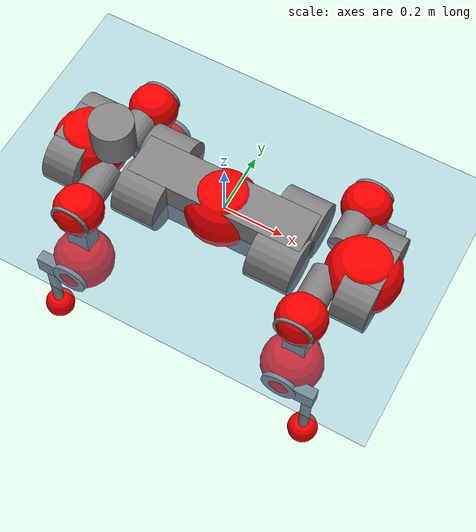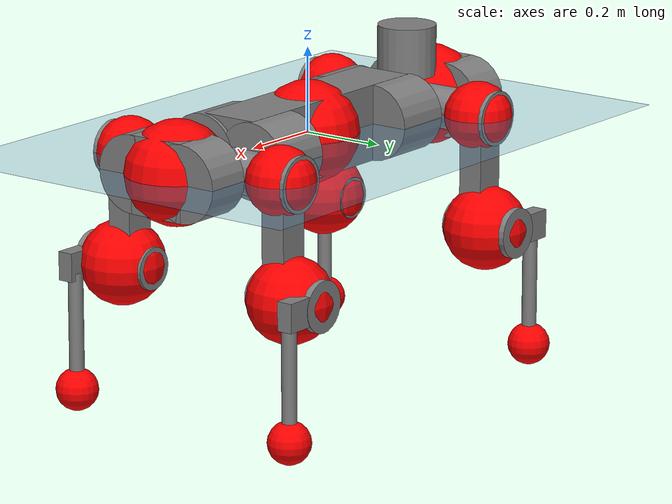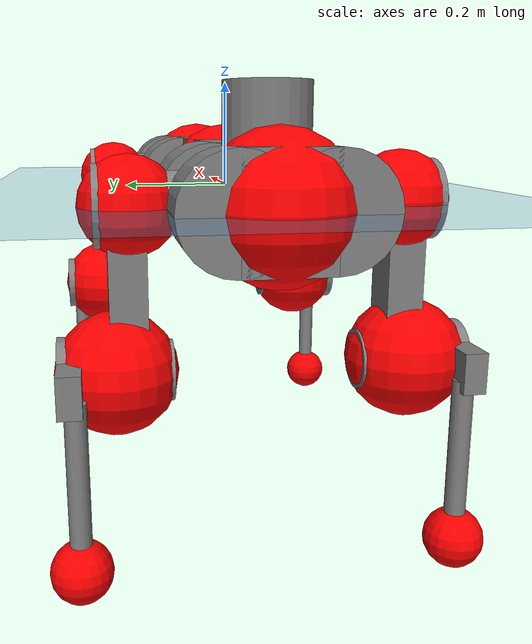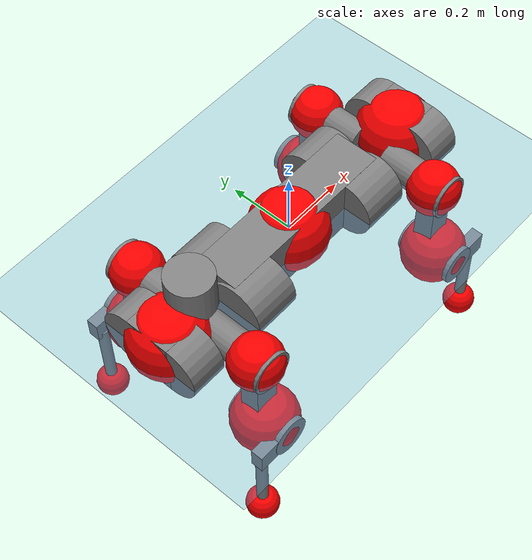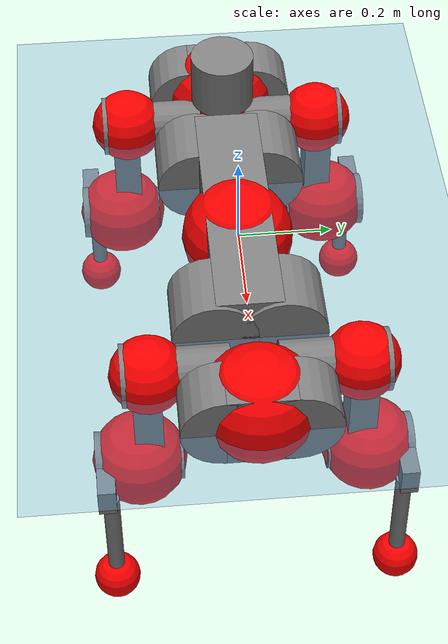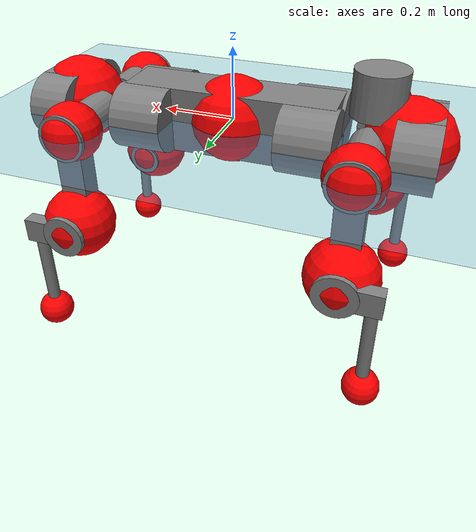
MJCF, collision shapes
<mujoco model="anymal_c">
  <compiler angle="radian" assetdir="assets" balanceinertia="true" inertiafromgeom="false"/>

  <option timestep="0.005" density="1.2" viscosity="2e-05"/>

  <size nkey="1"/>

  <visual>
    <quality shadowsize="8192"/>
    <map shadowclip="0.5"/>
  </visual>

  <default>
    <default class="/">
      <material specular="0" shininess="0.25"/>
      <geom contype="0" conaffinity="0" group="1" solref="-1000 -80"/>
      <site size="0.01 0.005 0.005" group="5"/>
      <general forcelimited="true" forcerange="-80 80" biastype="affine" gainprm="80" biasprm="0 -80 -2"/>
      <default class="anymal_c">
        <joint armature="0.01" damping="0.01" frictionloss="0.1"/>
        <default class="visual">
          <geom type="mesh" group="2"/>
          <default class="visual_zflip"/>
        </default>
        <default class="collision">
          <geom type="cylinder" group="3"/>
          <default class="foot">
            <geom size="0.03 0 0" type="sphere" condim="6" priority="1" friction="0.8 0.02 0.01" solimp="0.015 1 0.03"/>
          </default>
        </default>
      </default>
      <default class="reward_collision_sphere">
        <geom group="5" rgba="1 0 0 1"/>
      </default>
    </default>
  </default>

  <asset>
    <texture type="skybox" colorspace="auto" name="//unnamed_texture_0" builtin="gradient" rgb1="0.95 0.95 0.95" rgb2="0.95 0.95 0.95" width="100" height="600"/>
    <texture type="2d" colorspace="auto" name="texplane" builtin="checker" rgb1="0.345 0.575 0.748" rgb2="0.345 0.575 0.748" markrgb="1 1 1" width="512" height="512"/>
    <texture type="2d" colorspace="linear" name="base" file="base.png"/>
    <texture type="2d" colorspace="linear" name="top_shell" file="top_shell.png"/>
    <texture type="2d" colorspace="linear" name="bottom_shell" file="bottom_shell.png"/>
    <texture type="2d" colorspace="linear" name="remote" file="remote.png"/>
    <texture type="2d" colorspace="linear" name="hatch" file="hatch.png"/>
    <texture type="2d" colorspace="linear" name="handle" file="handle.png"/>
    <texture type="2d" colorspace="linear" name="face" file="face.png"/>
    <texture type="2d" colorspace="linear" name="battery" file="battery.png"/>
    <texture type="2d" colorspace="linear" name="lidar_cage" file="lidar_cage.png"/>
    <texture type="2d" colorspace="linear" name="depth_camera" file="depth_camera.png"/>
    <texture type="2d" colorspace="linear" name="wide_angle_camera" file="wide_angle_camera.png"/>
    <texture type="2d" colorspace="linear" name="lidar" file="lidar.png"/>
    <texture type="2d" colorspace="linear" name="drive" file="drive.png"/>
    <texture type="2d" colorspace="linear" name="hip_l" file="hip_l.png"/>
    <texture type="2d" colorspace="linear" name="shank_l" file="shank_l.png"/>
    <texture type="2d" colorspace="linear" name="foot" file="foot.png"/>
    <texture type="2d" colorspace="linear" name="thigh" file="thigh.png"/>
    <texture type="2d" colorspace="linear" name="shank_r" file="shank_r.png"/>
    <texture type="2d" colorspace="linear" name="hip_r" file="hip_r.png"/>
    <material name="MatPlane" class="/" texture="texplane" texuniform="true" texrepeat="2 2" specular="0.9" shininess="0.5"/>
    <material name="black_plastic" class="/" rgba="0.007 0.007 0.007 1"/>
    <material name="green" class="/" rgba="0.052 0.178 0.033 1"/>
    <material name="red" class="/" rgba="0.178 0.006 0.005 1"/>
    <material name="yellow" class="/" rgba="0.178 0.119 0.006 1"/>
    <material name="lwl" class="/" rgba="0.8 0.8 0.8 1"/>
    <material name="base" class="/" texture="base"/>
    <material name="top_shell" class="/" texture="top_shell"/>
    <material name="bottom_shell" class="/" texture="bottom_shell"/>
    <material name="hip_l" class="/" texture="hip_l"/>
    <material name="thigh" class="/" texture="thigh"/>
    <material name="shank_l" class="/" texture="shank_l"/>
    <material name="foot" class="/" texture="foot"/>
    <material name="hip_r" class="/" texture="hip_r"/>
    <material name="shank" class="/" texture="shank_r"/>
    <material name="hatch" class="/" texture="hatch"/>
    <material name="remote" class="/" texture="remote"/>
    <material name="handle" class="/" texture="handle"/>
    <material name="face" class="/" texture="face"/>
    <material name="depth_camera" class="/" texture="depth_camera"/>
    <material name="wide_angle_camera" class="/" texture="wide_angle_camera"/>
    <material name="battery" class="/" texture="battery"/>
    <material name="lidar_cage" class="/" texture="lidar_cage"/>
    <material name="lidar" class="/" texture="lidar"/>
    <material name="drive" class="/" texture="drive"/>
    <mesh name="base_0" class="/" file="base_0.obj"/>
    <mesh name="base_1" class="/" file="base_1.obj"/>
    <mesh name="base_2" class="/" file="base_2.obj"/>
    <mesh name="base_3" class="/" file="base_3.obj"/>
    <mesh name="base_4" class="/" file="base_4.obj"/>
    <mesh name="base_5" class="/" file="base_5.obj"/>
    <mesh name="top_shell" class="/" file="top_shell.obj"/>
    <mesh name="bottom_shell" class="/" file="bottom_shell.obj"/>
    <mesh name="remote" class="/" file="remote.obj"/>
    <mesh name="handle" class="/" file="handle.obj"/>
    <mesh name="face" class="/" file="face.obj"/>
    <mesh name="wide_angle_camera" class="/" file="wide_angle_camera.obj"/>
    <mesh name="depth_camera" class="/" file="depth_camera.obj"/>
    <mesh name="battery" class="/" file="battery.obj"/>
    <mesh name="lidar_cage" class="/" file="lidar_cage.obj"/>
    <mesh name="lidar" class="/" file="lidar.obj"/>
    <mesh name="drive" class="/" file="drive.obj"/>
    <mesh name="hip_l" class="/" file="hip_l.obj"/>
    <mesh name="thigh" class="/" file="thigh.obj"/>
    <mesh name="shank_l" class="/" file="shank_l.obj"/>
    <mesh name="foot" class="/" file="foot.obj"/>
    <mesh name="hip_r" class="/" file="hip_r.obj"/>
    <mesh name="hatch" class="/" file="hatch.obj"/>
    <mesh name="shank_r" class="/" file="shank_r.obj"/>
  </asset>

  <worldbody>
    <geom name="floor" class="/" size="100 100 0.125" type="plane" group="0" material="MatPlane"/>
    <light name="toplight_shadow" class="/" pos="0 0 5" dir="0.0990148 0.0990148 -0.990148" type="directional" ambient="0.04 0.04 0.04" diffuse="0.55 0.55 0.55" specular="0.12 0.12 0.12"/>
    <light name="toplight_fill" class="/" pos="0 0 5" dir="0.0990148 0.0990148 -0.990148" type="directional" castshadow="false" ambient="0.04 0.04 0.04" diffuse="0.3 0.3 0.3" specular="0.08 0.08 0.08"/>
    <body name="trunk" childclass="anymal_c" pos="-0.00265958 -0.00145191 0.000702128" quat="0.999999 -0.000430191 0.000898463 0.000363237">
      <inertial pos="-0.000183701 -2.75901e-05 0.0461048" quat="0.502069 0.497152 0.500151 0.500615" mass="18.7693" diaginertia="0.805983 0.692799 0.157856"/>
      <joint name="//unnamed_joint_0" type="free" armature="0" damping="0" frictionloss="0"/>
      <geom name="//unnamed_geom_1" class="visual" material="green" mesh="base_0"/>
      <geom name="//unnamed_geom_2" class="visual" material="yellow" mesh="base_1"/>
      <geom name="//unnamed_geom_3" class="visual" material="red" mesh="base_2"/>
      <geom name="//unnamed_geom_4" class="visual" material="black_plastic" mesh="base_3"/>
      <geom name="//unnamed_geom_5" class="visual" material="lwl" mesh="base_4"/>
      <geom name="//unnamed_geom_6" class="visual" material="base" mesh="base_5"/>
      <geom name="trunk_1" class="collision" size="0.290321 0.0700775 0.0900996" type="box"/>
      <geom name="trunk_2" class="collision" size="0.0900996 0.0725802" pos="0.227643 0.0715607 0" quat="0.707107 0 0.707107 0"/>
      <geom name="trunk_3" class="collision" size="0.0900996 0.0725802" pos="-0.227643 0.0715607 0" quat="0.707107 0 0.707107 0"/>
      <geom name="trunk_4" class="collision" size="0.0900996 0.0725802" pos="0.227643 -0.0715607 0" quat="0.707107 0 0.707107 0"/>
      <geom name="trunk_5" class="collision" size="0.0900996 0.0725802" pos="-0.227643 -0.0715607 0" quat="0.707107 0 0.707107 0"/>
      <geom name="//unnamed_geom_12" class="visual" material="top_shell" mesh="top_shell"/>
      <geom name="//unnamed_geom_13" class="visual" material="bottom_shell" mesh="bottom_shell"/>
      <geom name="//unnamed_geom_14" class="visual" material="remote" mesh="remote"/>
      <geom name="//unnamed_geom_15" class="visual" material="handle" mesh="handle"/>
      <geom name="//unnamed_geom_16" class="visual" pos="0.43383 0 0" quat="1 0 0 0" material="face" mesh="face"/>
      <geom name="trunk_6" class="collision" size="0.0550609 0.0700775 0.0900996" pos="0.491395 0 0" type="box"/>
      <geom name="//unnamed_geom_18" class="collision" size="0.0900996 0.0550609" pos="0.491395 0.0715607 0" quat="0.707107 0 0.707107 0"/>
      <geom name="//unnamed_geom_19" class="collision" size="0.0900996 0.0550609" pos="0.491395 -0.0715607 0" quat="0.707107 0 0.707107 0"/>
      <geom name="//unnamed_geom_20" class="visual" pos="0.483175 0 -0.0264311" quat="0.965926 0 0.258819 0" material="depth_camera" mesh="depth_camera"/>
      <geom name="//unnamed_geom_21" class="visual" pos="0.536924 0 0.0139878" material="wide_angle_camera" mesh="wide_angle_camera"/>
      <geom name="//unnamed_geom_22" class="visual_zflip" pos="-0.43383 0 0" quat="0 0 0 1" material="face" mesh="face"/>
      <geom name="trunk_7" class="collision" size="0.0550609 0.0700775 0.0900996" pos="-0.491395 0 0" quat="0 0 0 1" type="box"/>
      <geom name="//unnamed_geom_24" class="collision" size="0.0900996 0.0550609" pos="-0.491395 -0.0715607 0" quat="0 -0.707107 0 0.707107"/>
      <geom name="//unnamed_geom_25" class="collision" size="0.0900996 0.0550609" pos="-0.491395 0.0715607 0" quat="0 -0.707107 0 0.707107"/>
      <geom name="//unnamed_geom_26" class="visual" pos="-0.483175 0 -0.0264311" quat="0 -0.258819 0 0.965926" material="depth_camera" mesh="depth_camera"/>
      <geom name="//unnamed_geom_27" class="visual_zflip" pos="-0.536924 0 0.0139878" quat="0 0 0 1" material="wide_angle_camera" mesh="wide_angle_camera"/>
      <geom name="//unnamed_geom_28" class="visual" material="battery" mesh="battery"/>
      <geom name="//unnamed_geom_29" class="visual" pos="0 0.0778407 0.0279971" quat="0.683013 -0.183013 0.183013 0.683013" material="depth_camera" mesh="depth_camera"/>
      <geom name="//unnamed_geom_30" class="visual" pos="0 -0.0778407 0.0279971" quat="0.683013 0.183013 0.183013 -0.683013" material="depth_camera" mesh="depth_camera"/>
      <geom name="//unnamed_geom_31" class="visual" pos="-0.380975 0 0.0686776" quat="1 0 0 0" material="lidar_cage" mesh="lidar_cage"/>
      <geom name="trunk_8" class="collision" size="0.0700775 0.0600664" pos="-0.380975 0 0.124741"/>
      <geom name="//unnamed_geom_33" class="visual" pos="-0.380975 -9.56231e-06 0.13287" quat="0.707107 0 0 -0.707107" material="lidar" mesh="lidar"/>
      <geom name="//unnamed_geom_34" class="visual" pos="0.313886 0.106288 1.51641e-09" quat="0.258819 0.965926 0 0" material="drive" mesh="drive"/>
      <geom name="//unnamed_geom_35" class="visual" pos="0.313886 -0.106288 -1.51641e-09" quat="0.258819 -0.965926 0 0" material="drive" mesh="drive"/>
      <geom name="//unnamed_geom_36" class="visual" pos="-0.313886 0.106288 -1.51641e-09" quat="0 0 0.965926 -0.258819" material="drive" mesh="drive"/>
      <geom name="//unnamed_geom_37" class="visual" pos="-0.313886 -0.106288 1.51641e-09" quat="0 0 -0.965926 -0.258819" material="drive" mesh="drive"/>
      <geom name="//unnamed_geom_38" class="visual" pos="0.12141 0 0.0682104" quat="1 0 0 0" material="hatch" mesh="hatch"/>
      <geom name="//unnamed_geom_39" class="reward_collision_sphere" size="0.120133"/>
      <geom name="//unnamed_geom_40" class="reward_collision_sphere" size="0.120133" pos="0.470986 0 0"/>
      <geom name="//unnamed_geom_41" class="reward_collision_sphere" size="0.120133" pos="-0.470986 0 0"/>
      <site name="imu" pos="0.262029 0.00431336 0.0485736" size="0.0100111"/>
      <camera name="track" pos="0 -2.04459 0" quat="0.707107 0.707107 0 0" mode="trackcom"/>
      <camera name="ego_camera" pos="0.470986 0 -0.0373756" quat="-0.5 -0.5 0.5 0.5"/>
      <body name="LF_HIP" pos="0.314358 0.1061 -0.00015587" quat="0.258864 0.965913 0.00124566 2.37782e-05">
        <inertial pos="0.0566867 -0.0154429 -0.00786779" quat="-0.127116 0.710211 -0.132674 0.679588" mass="2.87973" diaginertia="0.00762269 0.00547323 0.00242489"/>
        <joint name="LF_HAA" pos="0 0 0" axis="0.999996 0.00120508 -0.00270807" range="-0.729593 0.441746" armature="0.0109553" damping="0.00348682" frictionloss="0.0974517"/>
        <geom name="//unnamed_geom_42" class="visual" pos="0 8.92036e-05 -1.46516e-05" quat="0.258819 -0.965926 0 0" material="hip_l" mesh="hip_l"/>
        <geom name="//unnamed_geom_43" class="visual" pos="0.0626935 -0.0756148 -0.043006" quat="0.183013 -0.683013 0.683013 0.183013" material="drive" mesh="drive"/>
        <geom name="//unnamed_geom_44" class="collision" size="0.0500553 0.0700775" pos="0.0626935 -0.0122265 -0.00645195" quat="-0.353553 -0.612372 0.612372 -0.353553"/>
        <body name="LF_THIGH" pos="0.0635984 -0.0757392 -0.0395865" quat="0.183034 -0.682826 0.683122 0.183281">
          <inertial pos="0.0350951 0.000531431 -0.226988" quat="0.992898 -0.00623349 -0.0826579 0.0853345" mass="3.10767" diaginertia="0.0376737 0.0327935 0.00299519"/>
          <joint name="LF_HFE" pos="0 0 0" axis="0.999999 0.00126547 -0.000609731" stiffness="0.0141429" range="-3.18784 3.1744" armature="0.0109295" damping="0" frictionloss="0.100122"/>
          <geom name="//unnamed_geom_45" class="visual" pos="0.000484259 7.63079e-07 0" quat="0.707107 0 0 -0.707107" material="thigh" mesh="thigh"/>
          <geom name="//unnamed_geom_46" class="collision" size="0.0650719 0.0400443" pos="0.0418654 0 0" quat="0.5 0.5 -0.5 -0.5"/>
          <geom name="//unnamed_geom_47" class="collision" size="0.0375415 0.0300332 0.14147" pos="0.0313991 0 -0.132042" quat="0.707107 0 0 -0.707107" type="box"/>
          <geom name="//unnamed_geom_48" class="visual" pos="0.104978 0 -0.266301" quat="1 0 0 0" material="drive" mesh="drive"/>
          <geom name="//unnamed_geom_49" class="collision" size="0.0500553 0.0700775" pos="0.0317131 0 -0.266301" quat="0.707107 0 0.707107 0"/>
          <geom name="//unnamed_geom_50" class="reward_collision_sphere" size="0.0800885" pos="0.0261659 0 0"/>
          <body name="LF_SHANK" pos="0.104436 -0.000631713 -0.266917" quat="1 0.000432058 -0.000104548 0.000199589">
            <inertial pos="0.00640604 -0.0623454 -0.077176" quat="0.991409 -0.127754 -0.00139941 -0.0280099" mass="0.583338" diaginertia="0.0129417 0.0103398 0.000786402"/>
            <joint name="LF_KFE" pos="0 0 0" axis="0.999978 0.00521167 0.00414142" range="-3.14819 3.09383" armature="0.00983231" damping="0.0099056" frictionloss="0.10123"/>
            <geom name="//unnamed_geom_51" class="visual" pos="0.000157906 0.000841964 0" quat="0.707107 0 0 -0.707107" material="shank_l" mesh="shank_l"/>
            <geom name="LF_kfe_act" class="collision" size="0.0600664 0.0200221" pos="0.0209327 0 0" quat="0.5 0.5 -0.5 -0.5"/>
            <geom name="//unnamed_geom_53" class="collision" size="0.0575626 0.0337874 0.019021" pos="0.0209327 -0.058781 0" quat="0.5 0.5 -0.5 -0.5" type="box"/>
            <geom name="//unnamed_geom_54" class="visual" pos="0.0136586 -0.0896396 -0.315795" quat="0.382683 0 0 -0.92388" material="foot" mesh="foot"/>
            <geom name="LF_calf" class="collision" size="0.0175194 0.141408" pos="0.0136586 -0.0899109 -0.157898" quat="0.707107 0 0 -0.707107"/>
            <geom name="LF_foot" class="foot" size="0.0310589" pos="0.0136586 -0.0899109 -0.294772" quat="0.707107 0 0 -0.707107"/>
            <geom name="//unnamed_geom_57" class="reward_collision_sphere" size="0.100111" pos="-0.0523318 0 0"/>
            <geom name="//unnamed_geom_58" class="reward_collision_sphere" size="0.0500553" pos="0.0136586 -0.0899109 -0.294772"/>
            <site name="LF_foot" class="foot" pos="0.0136586 -0.0899109 -0.294772" quat="0.707107 0 0 -0.707107" size="0.0100111"/>
          </body>
        </body>
      </body>
      <body name="RF_HIP" pos="0.314472 -0.104546 0.00196107" quat="0.258794 -0.965932 9.57492e-05 0.000272226">
        <inertial pos="0.0614911 0.0149432 -0.00762783" quat="0.13496 0.679364 0.13056 0.709369" mass="2.93015" diaginertia="0.00752566 0.00565436 0.00235563"/>
        <joint name="RF_HAA" pos="0 0 0" axis="0.999999 0.00140493 -0.000220566" range="-0.483404 0.72396" armature="0.00867184" damping="0.00887214" frictionloss="0.113473"/>
        <geom name="//unnamed_geom_59" class="visual" pos="0 -8.92028e-05 -1.46516e-05" quat="0.258819 0.965926 0 0" material="hip_r" mesh="hip_r"/>
        <geom name="//unnamed_geom_60" class="visual" pos="0.0626935 0.0756148 -0.043006" quat="0.183013 0.683013 0.683013 -0.183013" material="drive" mesh="drive"/>
        <geom name="//unnamed_geom_61" class="collision" size="0.0500553 0.0700775" pos="0.0626935 0.0122265 -0.00645195" quat="-0.353553 0.612372 0.612372 0.353553"/>
        <body name="RF_THIGH" pos="0.0625353 0.0744027 -0.0373674" quat="0.181898 0.683434 0.682805 -0.183327">
          <inertial pos="0.0307799 -0.0028014 -0.228087" quat="0.992679 -0.00505804 -0.081795 0.0887292" mass="3.0097" diaginertia="0.0382412 0.0339077 0.00293344"/>
          <joint name="RF_HFE" pos="0 0 0" axis="0.999987 0.000634974 -0.00509851" stiffness="0.00630313" range="-3.12077 3.15538" armature="0.0100033" damping="0.00994974" frictionloss="0.097663"/>
          <geom name="//unnamed_geom_62" class="visual" pos="0.000484259 7.63079e-07 0" quat="0.707107 0 0 -0.707107" material="thigh" mesh="thigh"/>
          <geom name="//unnamed_geom_63" class="collision" size="0.0650719 0.0400443" pos="0.0418654 0 0" quat="0.5 0.5 0.5 0.5"/>
          <geom name="//unnamed_geom_64" class="collision" size="0.0375415 0.0300332 0.14147" pos="0.0313991 0 -0.132042" quat="0.707107 0 0 0.707107" type="box"/>
          <geom name="//unnamed_geom_65" class="visual" pos="0.104978 0 -0.266301" quat="1 0 0 0" material="drive" mesh="drive"/>
          <geom name="//unnamed_geom_66" class="collision" size="0.0500553 0.0700775" pos="0.0317131 0 -0.266301" quat="0.707107 0 0.707107 0"/>
          <geom name="//unnamed_geom_67" class="reward_collision_sphere" size="0.0800885" pos="0.0261659 0 0"/>
          <body name="RF_SHANK" pos="0.105687 -0.000147237 -0.26467" quat="1 -6.6063e-05 3.54874e-05 -4.6638e-05">
            <inertial pos="0.00622707 0.0624219 -0.0741391" quat="0.993006 0.115212 -0.00205445 0.0257204" mass="0.598474" diaginertia="0.0134961 0.0103855 0.000824482"/>
            <joint name="RF_KFE" pos="0 0 0" axis="0.999917 0.0124589 0.00314334" range="-3.13227 3.13539" armature="0.0102789" damping="0.00992877" frictionloss="0.0948731"/>
            <geom name="//unnamed_geom_68" class="visual" pos="0.000157905 -0.000841962 0" quat="0.707107 0 0 0.707107" material="shank" mesh="shank_r"/>
            <geom name="RF_kfe_act" class="collision" size="0.0600664 0.0200221" pos="0.0209327 0 0" quat="0.5 0.5 0.5 0.5"/>
            <geom name="//unnamed_geom_70" class="collision" size="0.0575626 0.0337874 0.019021" pos="0.0209327 0.058781 0" quat="0.5 0.5 0.5 0.5" type="box"/>
            <geom name="//unnamed_geom_71" class="visual" pos="0.0136586 0.0896396 -0.315795" quat="0.382683 0 0 0.92388" material="foot" mesh="foot"/>
            <geom name="RF_calf" class="collision" size="0.0175194 0.141408" pos="0.0136586 0.0899109 -0.157898" quat="0.707107 0 0 0.707107"/>
            <geom name="RF_foot" class="foot" size="0.0296748" pos="0.0136586 0.0899109 -0.294772" quat="0.707107 0 0 0.707107"/>
            <geom name="//unnamed_geom_74" class="reward_collision_sphere" size="0.100111" pos="-0.0523318 0 0"/>
            <geom name="//unnamed_geom_75" class="reward_collision_sphere" size="0.0500553" pos="0.0136586 0.0899109 -0.294772"/>
            <site name="RF_foot" class="foot" pos="0.0136586 0.0899109 -0.294772" quat="0.707107 0 0 0.707107" size="0.0100111"/>
          </body>
        </body>
      </body>
      <body name="LH_HIP" pos="-0.31313 0.105119 0.00135273" quat="-0.000767421 0.00105975 0.965912 -0.258869">
        <inertial pos="0.0621111 0.0164156 -0.00753681" quat="0.134969 0.679111 0.128081 0.710061" mass="2.77525" diaginertia="0.00741835 0.00564688 0.00239067"/>
        <joint name="LH_HAA" pos="0 0 0" axis="0.999991 -0.00172829 0.00394722" range="-0.477992 0.716448" armature="0.00996867" damping="0.00884292" frictionloss="0.0964524"/>
        <geom name="//unnamed_geom_76" class="visual" pos="0 -8.92028e-05 -1.46516e-05" quat="-0.258819 -0.965926 0 0" material="hip_r" mesh="hip_r"/>
        <geom name="//unnamed_geom_77" class="visual" pos="0.0626935 0.0756148 -0.043006" quat="0.183013 0.683013 0.683013 -0.183013" material="drive" mesh="drive"/>
        <geom name="//unnamed_geom_78" class="collision" size="0.0500553 0.0700775" pos="0.0626935 0.0122265 -0.00645195" quat="-0.353553 0.612372 0.612372 0.353553"/>
        <body name="LH_THIGH" pos="0.0593685 0.0739861 -0.0378895" quat="0.183794 0.683419 0.682534 -0.182499">
          <inertial pos="0.032313 0.000545286 -0.228828" quat="0.992649 -0.0024907 -0.0723026 0.0970231" mass="2.99543" diaginertia="0.037511 0.0325753 0.00294621"/>
          <joint name="LH_HFE" pos="0 0 0" axis="0.999984 0.00546278 -0.00140147" range="-3.13347 3.14226" armature="0.00944867" damping="0" frictionloss="0.104645"/>
          <geom name="//unnamed_geom_79" class="visual" pos="0.000484259 7.63079e-07 0" quat="0.707107 0 0 -0.707107" material="thigh" mesh="thigh"/>
          <geom name="//unnamed_geom_80" class="collision" size="0.0650719 0.0400443" pos="0.0418654 0 0" quat="0.5 0.5 -0.5 -0.5"/>
          <geom name="//unnamed_geom_81" class="collision" size="0.0375415 0.0300332 0.14147" pos="0.0313991 0 -0.132042" quat="0.707107 0 0 -0.707107" type="box"/>
          <geom name="//unnamed_geom_82" class="visual" pos="0.104978 0 -0.266301" quat="1 0 0 0" material="drive" mesh="drive"/>
          <geom name="//unnamed_geom_83" class="collision" size="0.0500553 0.0700775" pos="0.0317131 0 -0.266301" quat="0.707107 0 0.707107 0"/>
          <geom name="//unnamed_geom_84" class="reward_collision_sphere" size="0.0800885" pos="0.0261659 0 0"/>
          <body name="LH_SHANK" pos="0.103885 -0.000988735 -0.266551" quat="1 9.2823e-05 -0.000214586 -5.50938e-05">
            <inertial pos="0.00568279 0.0623907 -0.0748096" quat="0.992944 0.11561 -0.000682806 0.0263929" mass="0.587583" diaginertia="0.0127525 0.0103294 0.000788298"/>
            <joint name="LH_KFE" pos="0 0 0" axis="0.99999 0.00203741 0.00405713" range="-3.12141 3.14168" armature="0.0102165" damping="0" frictionloss="0.0987449"/>
            <geom name="//unnamed_geom_85" class="visual" pos="0.000157905 -0.000841962 0" quat="-0.707107 0 0 -0.707107" material="shank" mesh="shank_r"/>
            <geom name="LH_kfe_act" class="collision" size="0.0600664 0.0200221" pos="0.0209327 0 0" quat="0.5 0.5 -0.5 -0.5"/>
            <geom name="//unnamed_geom_87" class="collision" size="0.0575626 0.0337874 0.019021" pos="0.0209327 0.058781 0" quat="0.5 0.5 -0.5 -0.5" type="box"/>
            <geom name="//unnamed_geom_88" class="visual" pos="0.0136586 0.0896396 -0.315795" quat="-0.382683 0 0 -0.92388" material="foot" mesh="foot"/>
            <geom name="LH_calf" class="collision" size="0.0175194 0.141408" pos="0.0136586 0.0899109 -0.157898" quat="0.707107 0 0 -0.707107"/>
            <geom name="LH_foot" class="foot" size="0.0325731" pos="0.0136586 0.0899109 -0.294772" quat="0.707107 0 0 -0.707107"/>
            <geom name="//unnamed_geom_91" class="reward_collision_sphere" size="0.100111" pos="-0.0523318 0 0"/>
            <geom name="//unnamed_geom_92" class="reward_collision_sphere" size="0.0500553" pos="0.0136586 0.0899109 -0.294772"/>
            <site name="LH_foot" class="foot" pos="0.0136586 0.0899109 -0.294772" quat="0.707107 0 0 -0.707107" size="0.0100111"/>
          </body>
        </body>
      </body>
      <body name="RH_HIP" pos="-0.314765 -0.10881 0.00225024" quat="0.000728013 -0.000340905 -0.965954 -0.258713">
        <inertial pos="0.0592121 -0.0137407 -0.00780157" quat="-0.116309 0.711524 -0.130723 0.680528" mass="2.78194" diaginertia="0.00740238 0.00555211 0.00236013"/>
        <joint name="RH_HAA" pos="0 0 0" axis="0.999996 0.00270676 5.8956e-06" stiffness="0.00706527" range="-0.732228 0.487438" armature="0.0114449" damping="0.0229179" frictionloss="0.0881645"/>
        <geom name="//unnamed_geom_93" class="visual" pos="0 8.92036e-05 -1.46516e-05" quat="-0.258819 0.965926 0 0" material="hip_l" mesh="hip_l"/>
        <geom name="//unnamed_geom_94" class="visual" pos="0.0626935 -0.0756148 -0.043006" quat="-0.183013 0.683013 -0.683013 -0.183013" material="drive" mesh="drive"/>
        <geom name="//unnamed_geom_95" class="collision" size="0.0500553 0.0700775" pos="0.0626935 -0.0122265 -0.00645195" quat="0.353553 0.612372 -0.612372 0.353553"/>
        <body name="RH_THIGH" pos="0.0630397 -0.0737918 -0.0413838" quat="-0.183214 0.683095 -0.6829 -0.182923">
          <inertial pos="0.0323383 -0.000192847 -0.228811" quat="0.993036 -0.00479922 -0.0808064 0.0855979" mass="3.11532" diaginertia="0.0386354 0.0338515 0.00291459"/>
          <joint name="RH_HFE" pos="0 0 0" axis="0.999983 0.000360066 0.00573432" range="-3.19134 3.16345" armature="0.0101736" damping="0.0126031" frictionloss="0.105452"/>
          <geom name="//unnamed_geom_96" class="visual" pos="0.000484259 7.63079e-07 0" quat="0.707107 0 0 -0.707107" material="thigh" mesh="thigh"/>
          <geom name="//unnamed_geom_97" class="collision" size="0.0650719 0.0400443" pos="0.0418654 0 0" quat="0.5 0.5 0.5 0.5"/>
          <geom name="//unnamed_geom_98" class="collision" size="0.0375415 0.0300332 0.14147" pos="0.0313991 0 -0.132042" quat="0.707107 0 0 0.707107" type="box"/>
          <geom name="//unnamed_geom_99" class="visual" pos="0.104978 0 -0.266301" quat="1 0 0 0" material="drive" mesh="drive"/>
          <geom name="//unnamed_geom_100" class="collision" size="0.0500553 0.0700775" pos="0.0317131 0 -0.266301" quat="0.707107 0 0.707107 0"/>
          <geom name="//unnamed_geom_101" class="reward_collision_sphere" size="0.0800885" pos="0.0261659 0 0"/>
          <body name="RH_SHANK" pos="0.101919 0.00205065 -0.266818" quat="1 -0.000422707 -6.05359e-06 5.88437e-05">
            <inertial pos="0.00844676 -0.0624442 -0.0750136" quat="0.992959 -0.116354 -0.00210793 -0.0221151" mass="0.58967" diaginertia="0.012397 0.00976791 0.000782307"/>
            <joint name="RH_KFE" pos="0 0 0" axis="0.999992 -0.00319665 0.00255996" range="-3.08819 3.18875" armature="0.00894015" damping="0.00503006" frictionloss="0.0947769"/>
            <geom name="//unnamed_geom_102" class="visual" pos="0.000157906 0.000841964 0" quat="0.707107 0 0 -0.707107" material="shank_l" mesh="shank_l"/>
            <geom name="RH_kfe_act" class="collision" size="0.0600664 0.0200221" pos="0.0209327 0 0" quat="0.5 0.5 0.5 0.5"/>
            <geom name="//unnamed_geom_104" class="collision" size="0.0575626 0.0337874 0.019021" pos="0.0209327 -0.058781 0" quat="0.5 0.5 0.5 0.5" type="box"/>
            <geom name="//unnamed_geom_105" class="visual" pos="0.0136586 -0.0896396 -0.315795" quat="0.382683 0 0 -0.92388" material="foot" mesh="foot"/>
            <geom name="RH_calf" class="collision" size="0.0175194 0.141408" pos="0.0136586 -0.0899109 -0.157898" quat="0.707107 0 0 0.707107"/>
            <geom name="RH_foot" class="foot" size="0.030561" pos="0.0136586 -0.0899109 -0.294772" quat="0.707107 0 0 0.707107"/>
            <geom name="//unnamed_geom_108" class="reward_collision_sphere" size="0.100111" pos="-0.0523318 0 0"/>
            <geom name="//unnamed_geom_109" class="reward_collision_sphere" size="0.0500553" pos="0.0136586 -0.0899109 -0.294772"/>
            <site name="RH_foot" class="foot" pos="0.0136586 -0.0899109 -0.294772" quat="0.707107 0 0 0.707107" size="0.0100111"/>
          </body>
        </body>
      </body>
    </body>
  </worldbody>

  <contact>
    <pair class="/" geom1="floor" geom2="LF_foot" name="//unnamed_contact_0"/>
    <pair class="/" geom1="floor" geom2="RF_foot" name="//unnamed_contact_1"/>
    <pair class="/" geom1="floor" geom2="LH_foot" name="//unnamed_contact_2"/>
    <pair class="/" geom1="floor" geom2="RH_foot" name="//unnamed_contact_3"/>
  </contact>

  <actuator>
    <general name="LF_HAA" class="/" joint="LF_HAA" forcerange="-80.4932 80.4932" gainprm="81.5476" biasprm="0 -81.5476 -1.8841"/>
    <general name="LF_HFE" class="/" joint="LF_HFE" forcerange="-80.1563 80.1563" gainprm="81.5476" biasprm="0 -81.5476 -1.8841"/>
    <general name="LF_KFE" class="/" joint="LF_KFE" forcerange="-81.0252 81.0252" gainprm="81.5476" biasprm="0 -81.5476 -1.8841"/>
    <general name="RF_HAA" class="/" joint="RF_HAA" forcerange="-88.6815 88.6815" gainprm="81.5476" biasprm="0 -81.5476 -1.8841"/>
    <general name="RF_HFE" class="/" joint="RF_HFE" forcerange="-80.5841 80.5841" gainprm="81.5476" biasprm="0 -81.5476 -1.8841"/>
    <general name="RF_KFE" class="/" joint="RF_KFE" forcerange="-75.1575 75.1575" gainprm="81.5476" biasprm="0 -81.5476 -1.8841"/>
    <general name="LH_HAA" class="/" joint="LH_HAA" forcerange="-79.3868 79.3868" gainprm="81.5476" biasprm="0 -81.5476 -1.8841"/>
    <general name="LH_HFE" class="/" joint="LH_HFE" forcerange="-79.4687 79.4687" gainprm="81.5476" biasprm="0 -81.5476 -1.8841"/>
    <general name="LH_KFE" class="/" joint="LH_KFE" forcerange="-82.2188 82.2188" gainprm="81.5476" biasprm="0 -81.5476 -1.8841"/>
    <general name="RH_HAA" class="/" joint="RH_HAA" forcerange="-79.2341 79.2341" gainprm="81.5476" biasprm="0 -81.5476 -1.8841"/>
    <general name="RH_HFE" class="/" joint="RH_HFE" forcerange="-83.415 83.415" gainprm="81.5476" biasprm="0 -81.5476 -1.8841"/>
    <general name="RH_KFE" class="/" joint="RH_KFE" forcerange="-87.9564 87.9564" gainprm="81.5476" biasprm="0 -81.5476 -1.8841"/>
  </actuator>

  <sensor>
    <gyro site="imu" name="imu_angular_velocity"/>
    <velocimeter site="imu" name="imu_linear_velocity"/>
    <framelinvel objtype="site" objname="LF_foot" name="LF_foot_global_linear_velocity"/>
    <framelinvel objtype="site" objname="RF_foot" name="RF_foot_global_linear_velocity"/>
    <framelinvel objtype="site" objname="LH_foot" name="LH_foot_global_linear_velocity"/>
    <framelinvel objtype="site" objname="RH_foot" name="RH_foot_global_linear_velocity"/>
  </sensor>

  <keyframe>
    <key name="home" qpos="0 0 0.55 1 0 0 0 0 0.4 -0.8 0 -0.4 0.8 0 -0.4 0.8 0 0.4 -0.8"/>
  </keyframe>
</mujoco>
